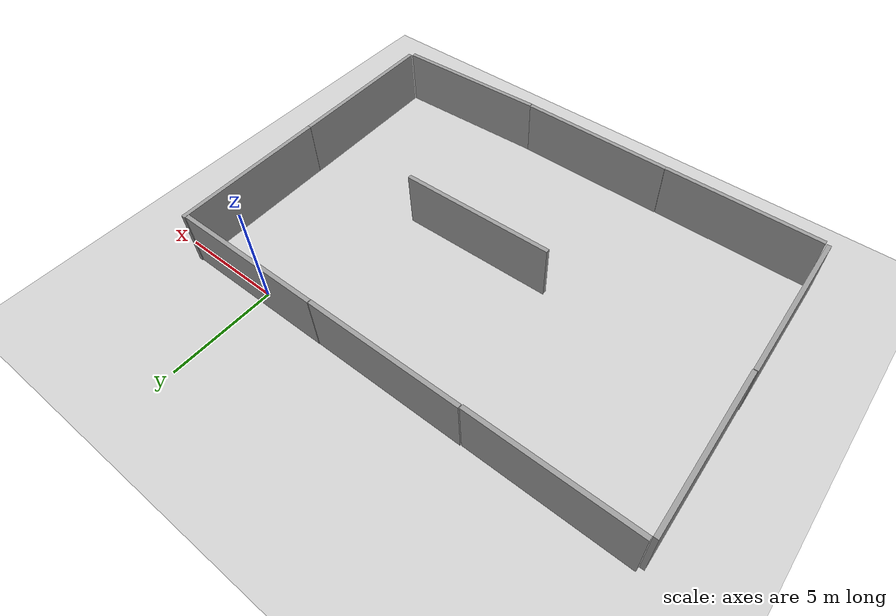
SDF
<sdf version="1.6">
 <world name="default">
  <light name="sun" type="directional">
   <pose>0 0 10 0 -0 0</pose>
   <diffuse>0.8 0.8 0.8 1</diffuse>
   <specular>0.1 0.1 0.1 1</specular>
   <attenuation>
    <range>1000</range>
    <constant>0.9</constant>
    <linear>0.01</linear>
    <quadratic>0.001</quadratic>
   </attenuation>
   <direction>-0.5 0.5 -1</direction>
  </light>
  <model name="ground_plane">
   <static>1</static>
   <link name="link">
    <collision name="collision">
     <geometry><plane><normal>0 0 1</normal><size>100 100</size></plane></geometry>
     <surface><friction><ode><mu>100</mu><mu2>50</mu2></ode></friction></surface>
    </collision>
    <visual name="visual">
     <cast_shadows>0</cast_shadows>
     <geometry><plane><normal>0 0 1</normal><size>100 100</size></plane></geometry>
     <material>
      <script><uri>file://media/materials/scripts/gazebo.material</uri><name>Gazebo/Grey</name></script>
     </material>
    </visual>
   </link>
  </model>
  <gravity>0 0 -9.8</gravity>
  <magnetic_field>6e-06 2.3e-05 -4.2e-05</magnetic_field>
  <atmosphere type="adiabatic"/>
  <physics name="default_physics" default="0" type="ode">
   <max_step_size>0.001</max_step_size>
   <real_time_factor>1</real_time_factor>
   <real_time_update_rate>1000</real_time_update_rate>
  </physics>
  <scene><ambient>0.4 0.4 0.4 1</ambient><background>0.7 0.7 0.7 1</background><shadows>1</shadows></scene>
  <spherical_coordinates>
   <surface_model>EARTH_WGS84</surface_model>
   <latitude_deg>0</latitude_deg>
   <longitude_deg>0</longitude_deg>
   <elevation>0</elevation>
   <heading_deg>0</heading_deg>
  </spherical_coordinates>
  <model name="grey_wall">
   <static>1</static>
   <link name="link">
    <pose>0 0 1.4 0 -0 0</pose>
    <collision name="collision"><geometry><box><size>7.5 0.2 2.8</size></box></geometry></collision>
    <visual name="visual">
     <cast_shadows>0</cast_shadows>
     <geometry><box><size>7.5 0.2 2.8</size></box></geometry>
     <material>
      <script>
       <uri>model://grey_wall/materials/scripts</uri>
       <uri>model://grey_wall/materials/textures</uri>
       <name>vrc/grey_wall</name>
      </script>
     </material>
    </visual>
   </link>
   <pose>0.126379 0.329973 0 0 -0 0</pose>
  </model>
  <model name="grey_wall_0">
   <static>1</static>
   <link name="link">
    <pose>0 0 1.4 0 -0 0</pose>
    <collision name="collision"><geometry><box><size>7.5 0.2 2.8</size></box></geometry></collision>
    <visual name="visual">
     <cast_shadows>0</cast_shadows>
     <geometry><box><size>7.5 0.2 2.8</size></box></geometry>
     <material>
      <script>
       <uri>model://grey_wall/materials/scripts</uri>
       <uri>model://grey_wall/materials/textures</uri>
       <name>vrc/grey_wall</name>
      </script>
     </material>
    </visual>
   </link>
   <pose>-7.40305 0.32069 0 0 -0 0</pose>
  </model>
  <model name="grey_wall_1">
   <static>1</static>
   <link name="link">
    <pose>0 0 1.4 0 -0 0</pose>
    <collision name="collision"><geometry><box><size>7.5 0.2 2.8</size></box></geometry></collision>
    <visual name="visual">
     <cast_shadows>0</cast_shadows>
     <geometry><box><size>7.5 0.2 2.8</size></box></geometry>
     <material>
      <script>
       <uri>model://grey_wall/materials/scripts</uri>
       <uri>model://grey_wall/materials/textures</uri>
       <name>vrc/grey_wall</name>
      </script>
     </material>
    </visual>
   </link>
   <pose>-14.941 0.288888 0 0 -0 0</pose>
  </model>
  <model name="grey_wall_2">
   <static>1</static>
   <link name="link">
    <pose>0 0 1.4 0 -0 0</pose>
    <collision name="collision"><geometry><box><size>7.5 0.2 2.8</size></box></geometry></collision>
    <visual name="visual">
     <cast_shadows>0</cast_shadows>
     <geometry><box><size>7.5 0.2 2.8</size></box></geometry>
     <material>
      <script>
       <uri>model://grey_wall/materials/scripts</uri>
       <uri>model://grey_wall/materials/textures</uri>
       <name>vrc/grey_wall</name>
      </script>
     </material>
    </visual>
   </link>
   <pose>-18.7441 -3.57054 0 0 0 -1.55441</pose>
  </model>
  <model name="grey_wall_2_clone">
   <static>1</static>
   <link name="link">
    <pose>0 0 1.4 0 -0 0</pose>
    <collision name="collision"><geometry><box><size>7.5 0.2 2.8</size></box></geometry></collision>
    <visual name="visual">
     <cast_shadows>0</cast_shadows>
     <geometry><box><size>7.5 0.2 2.8</size></box></geometry>
     <material>
      <script>
       <uri>model://grey_wall/materials/scripts</uri>
       <uri>model://grey_wall/materials/textures</uri>
       <name>vrc/grey_wall</name>
      </script>
     </material>
    </visual>
   </link>
   <pose>-18.6462 -11.0933 0 0 0 -1.55441</pose>
  </model>
  <model name="grey_wall_2_clone_clone_0">
   <static>1</static>
   <link name="link">
    <pose>0 0 1.4 0 -0 0</pose>
    <collision name="collision"><geometry><box><size>7.5 0.2 2.8</size></box></geometry></collision>
    <visual name="visual">
     <cast_shadows>0</cast_shadows>
     <geometry><box><size>7.5 0.2 2.8</size></box></geometry>
     <material>
      <script>
       <uri>model://grey_wall/materials/scripts</uri>
       <uri>model://grey_wall/materials/textures</uri>
       <name>vrc/grey_wall</name>
      </script>
     </material>
    </visual>
   </link>
   <pose>-7.16806 -14.8865 0 0 -0 3.14127</pose>
  </model>
  <model name="grey_wall_clone">
   <static>1</static>
   <link name="link">
    <pose>0 0 1.4 0 -0 0</pose>
    <collision name="collision"><geometry><box><size>7.5 0.2 2.8</size></box></geometry></collision>
    <visual name="visual">
     <cast_shadows>0</cast_shadows>
     <geometry><box><size>7.5 0.2 2.8</size></box></geometry>
     <material>
      <script>
       <uri>model://grey_wall/materials/scripts</uri>
       <uri>model://grey_wall/materials/textures</uri>
       <name>vrc/grey_wall</name>
      </script>
     </material>
    </visual>
   </link>
   <pose>0.346489 -14.7598 0 0 -0 0.038684</pose>
  </model>
  <model name="grey_wall_clone_1">
   <static>1</static>
   <link name="link">
    <pose>0 0 1.4 0 -0 0</pose>
    <collision name="collision"><geometry><box><size>7.5 0.2 2.8</size></box></geometry></collision>
    <visual name="visual">
     <cast_shadows>0</cast_shadows>
     <geometry><box><size>7.5 0.2 2.8</size></box></geometry>
     <material>
      <script>
       <uri>model://grey_wall/materials/scripts</uri>
       <uri>model://grey_wall/materials/textures</uri>
       <name>vrc/grey_wall</name>
      </script>
     </material>
    </visual>
   </link>
   <pose>-14.6777 -14.901 0 0 -0 0</pose>
  </model>
  <model name="grey_wall_2_clone_clone_0_clone_1">
   <static>1</static>
   <link name="link">
    <pose>0 0 1.4 0 -0 0</pose>
    <collision name="collision"><geometry><box><size>7.5 0.2 2.8</size></box></geometry></collision>
    <visual name="visual">
     <cast_shadows>0</cast_shadows>
     <geometry><box><size>7.5 0.2 2.8</size></box></geometry>
     <material>
      <script>
       <uri>model://grey_wall/materials/scripts</uri>
       <uri>model://grey_wall/materials/textures</uri>
       <name>vrc/grey_wall</name>
      </script>
     </material>
    </visual>
   </link>
   <pose>4.04594 -3.2792 0 0 0 -1.55441</pose>
  </model>
  <model name="grey_wall_2_clone_clone_0_clone_1_clone">
   <static>1</static>
   <link name="link">
    <pose>0 0 1.4 0 -0 0</pose>
    <collision name="collision"><geometry><box><size>7.5 0.2 2.8</size></box></geometry></collision>
    <visual name="visual">
     <cast_shadows>0</cast_shadows>
     <geometry><box><size>7.5 0.2 2.8</size></box></geometry>
     <material>
      <script>
       <uri>model://grey_wall/materials/scripts</uri>
       <uri>model://grey_wall/materials/textures</uri>
       <name>vrc/grey_wall</name>
      </script>
     </material>
    </visual>
   </link>
   <pose>4.16079 -10.7481 0 0 0 -1.55441</pose>
  </model>
  <model name="grey_wall_2_clone_clone_0_clone_1_clone_clone">
   <static>1</static>
   <link name="link">
    <pose>0 0 1.4 0 -0 0</pose>
    <collision name="collision"><geometry><box><size>7.5 0.2 2.8</size></box></geometry></collision>
    <visual name="visual">
     <cast_shadows>0</cast_shadows>
     <geometry><box><size>7.5 0.2 2.8</size></box></geometry>
     <material>
      <script>
       <uri>model://grey_wall/materials/scripts</uri>
       <uri>model://grey_wall/materials/textures</uri>
       <name>vrc/grey_wall</name>
      </script>
     </material>
    </visual>
   </link>
   <pose>-5.77352 -7.41459 0 0 0 -3.12664</pose>
  </model>
 </world>
</sdf>
